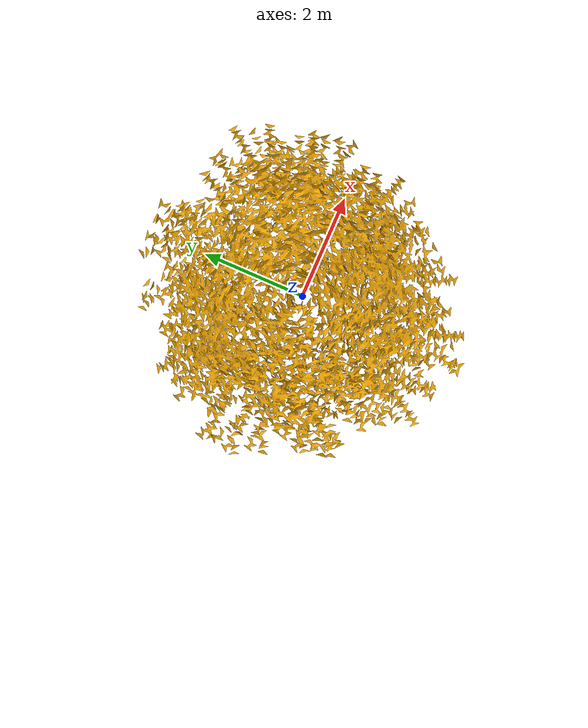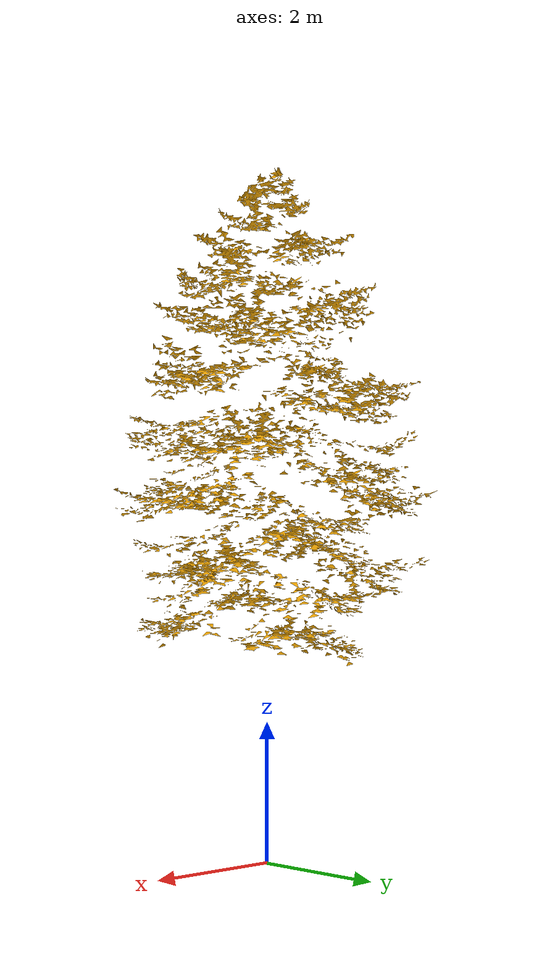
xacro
<robot name="robot">
  <link name="terrain_v6_leaves_003_001_link">
    <inertial>
      <origin xyz="0 0 0" rpy="0 0 0" />
      <mass value="1" />
      <inertia ixx="1" ixy="0" ixz="0" iyy="1" iyz="0" izz="1" />
    </inertial>
    <visual>
      <origin xyz="0 0 0" rpy="0 0 0" />
      <geometry>
        <mesh filename="package://custom_gazebo_world/world_type/hard_world/meshes/terrain_v6_leaves_003_001.dae" />
      </geometry>
    </visual>
  </link>

  <gazebo> <static>true</static></gazebo>
</robot>
